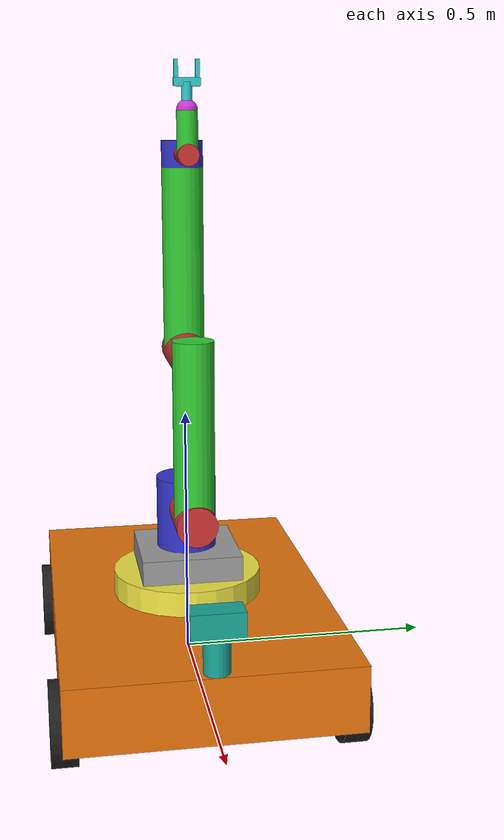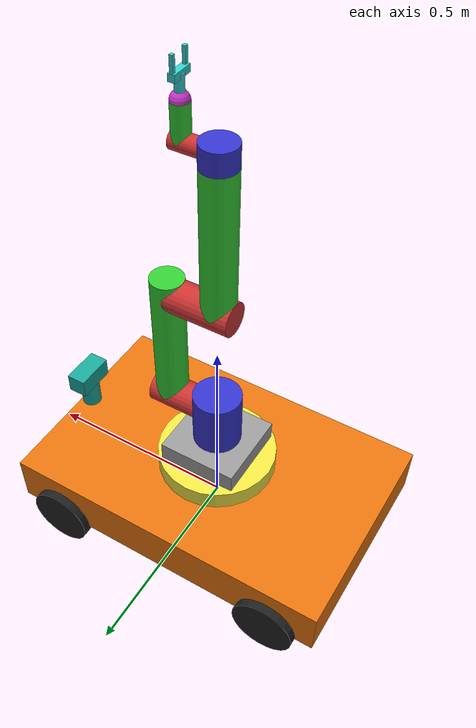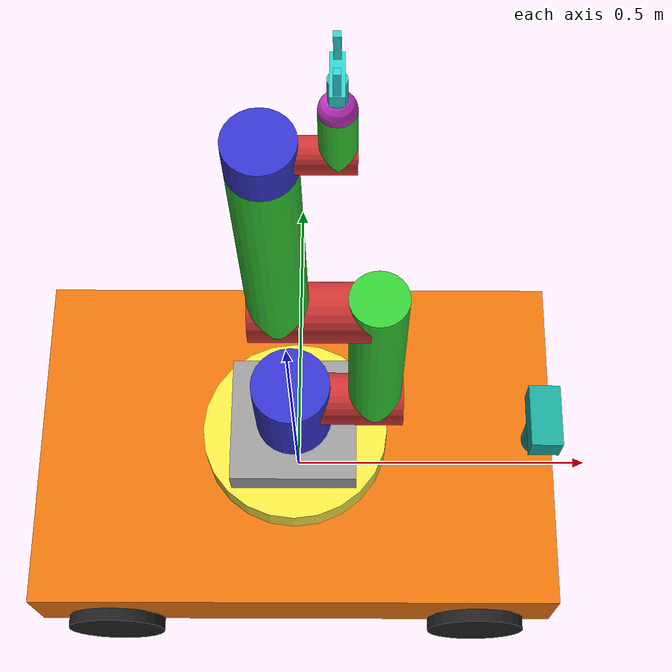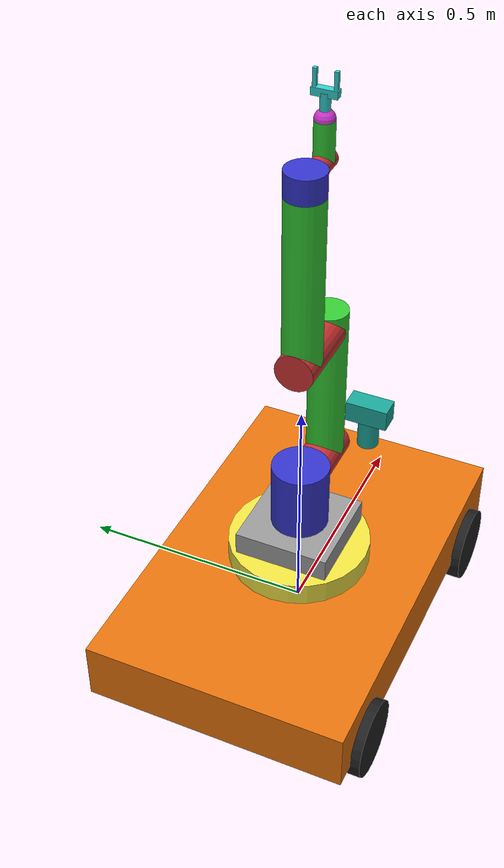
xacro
<?xml version="1.0"?>
<robot xmlns:xacro="http://www.ros.org/wiki/xacro" name="mobiarm">
    <xacro:arg name="initial_positions_file" default="initial_positions.yaml" />

    <!-- Import mobiarm urdf file -->
    <xacro:include filename="$(find main_nodes)/urdf/robot.urdf.xacro" />

    <!-- Import control_xacro -->
    <xacro:include filename="mobiarm.ros2_control.xacro" />

    <xacro:mobiarm_ros2_control name="FakeSystem" initial_positions_file="$(arg initial_positions_file)"/>

</robot>

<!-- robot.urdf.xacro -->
<robot name="mobiarm" xmlns:xacro="http://www.ros.org/wiki/xacro">

    <xacro:include filename="$(find main_nodes)/urdf/base.urdf.xacro" />
    <xacro:include filename="$(find main_nodes)/urdf/arm.urdf.xacro" />

    <link name="lidar_link">
        <visual>
            <geometry>
                <cylinder radius="0.15" length="0.05"/>
            </geometry>
        </visual>
        <inertial>
            <mass value="0.3"/>
            <inertia ixx="0.0005425" ixy="0" ixz="0"
                    iyy="0.0005425" iyz="0"
                    izz="0.00096"/>
        </inertial>
    </link>

    <joint name="lidar_joint" type="fixed">
        <parent link="robot_base"/>
        <child link="lidar_link"/>
        <origin xyz="0 0 0.15" rpy="0 0 0"/>
    </joint>

    <joint name="connector_joint" type="fixed">
        <parent link="lidar_link"/>
        <child link="arm_base_link"/>
        <origin xyz="0 0 0.025" rpy="0 0 0"/>
    </joint>

    <gazebo reference="lidar_link">
        <sensor type="ray" name="lidar">
            <!-- Scan plane ~2 cm above origin (z~0.17): clears the base top (0.125),
                 under the arm-base collision (~0.18). -->
            <pose>0 0 0.02 0 0 0</pose>
            <always_on>true</always_on>
            <visualize>true</visualize>
            <update_rate>10</update_rate>
            <ray>
            <scan>
                <horizontal>
                <samples>360</samples>
                <min_angle>-3.14159</min_angle>
                <max_angle>3.14159</max_angle>
                </horizontal>
            </scan>
            <range>
                <min>0.15</min>
                <max>12.0</max>
            </range>
            </ray>
            <plugin name="lidar_plugin" filename="libgazebo_ros_ray_sensor.so">
            <ros>
                <!-- Raw scan (has self-hits on the camera stand); scan_self_filter
                     cleans it and republishes /scan for SLAM/Nav2. -->
                <remapping>~/out:=scan_raw</remapping>
            </ros>
            <output_type>sensor_msgs/LaserScan</output_type>
            <frame_name>lidar_link</frame_name>
            </plugin>
        </sensor>
    </gazebo>

    <link name="camera_link">
        <visual>
            <geometry>
                <box size="0.05 0.1 0.05"/>
            </geometry>
            <material name="sensor_turquoise">
                <color rgba="0.1 0.65 0.6 1.0"/>
            </material>
        </visual>
        <!-- Collision kept (honest sim): the real lidar hits this; self-hits are
             removed downstream by scan_self_filter. -->
        <collision>
            <geometry><box size="0.05 0.05 0.05" /></geometry>
        </collision>
        <inertial>
            <mass value="0.3"/>
            <inertia ixx="0.0005425" ixy="0" ixz="0"
                    iyy="0.0005425" iyz="0"
                    izz="0.00096"/>
        </inertial>
    </link>

    <link name="camera_optical_frame"/>

    <joint name="camera_optical_joint" type="fixed">
        <parent link="camera_link"/>
        <child link="camera_optical_frame"/>
        <origin xyz="0 0 0" rpy="-1.5708 0 -1.5708"/>
    </joint>

    <link name="camera_stand_link">
        <visual>
            <geometry>
                <cylinder radius="0.025" length="0.1"/>
            </geometry>
            <material name="sensor_turquoise">
                <color rgba="0.1 0.65 0.6 1.0"/>
            </material>
        </visual>
        <!-- Collision kept (see camera_link): crosses the scan plane; self-hits
             removed by scan_self_filter. -->
        <collision>
            <geometry><cylinder radius="0.025" length="0.1"/></geometry>
        </collision>
        <inertial>
            <mass value="0.3"/>
            <inertia ixx="0.0005425" ixy="0" ixz="0"
                    iyy="0.0005425" iyz="0"
                    izz="0.00096"/>
        </inertial>
    </link>

    <joint name="camera_stand_joint" type="fixed">
        <parent link="robot_base"/>
        <child link="camera_stand_link"/>
        <origin xyz="0.4 0 0.17" rpy="0 0 0"/>
    </joint>

    <joint name="camera_joint" type="fixed">
        <parent link="camera_stand_link"/>
        <child link="camera_link"/>
        <origin xyz="0 0 0.05" rpy="0 0 0"/>
    </joint>

    <!-- Stand + camera share one colour so they read as a single mast. -->
    <gazebo reference="camera_stand_link"><material>Gazebo/Turquoise</material></gazebo>

    <gazebo reference="camera_link">
        <material>Gazebo/Turquoise</material>
        <sensor name="camera" type="depth">
            <always_on>true</always_on>
            <update_rate>30</update_rate>
            <visualize>true</visualize>
            <camera>
                <horizontal_fov>1.047</horizontal_fov>   <!-- ~60 degrees -->
                <image>
                    <width>640</width>
                    <height>480</height>
                    <format>R8G8B8</format>
                </image>
                <clip>
                    <near>0.05</near>
                    <far>10.0</far>
                </clip>
            </camera>
            <plugin name="camera_plugin" filename="libgazebo_ros_camera.so">
                <camera_name>camera</camera_name>
                <frame_name>camera_optical_frame</frame_name>
                <!-- valid depth range; readings outside come back as NaN -->
                <min_depth>0.05</min_depth>
                <max_depth>10.0</max_depth>
            </plugin>
        </sensor>
    </gazebo>

</robot>

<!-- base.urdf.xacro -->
<robot name="r2d2" xmlns:xacro="http://www.ros.org/wiki/xacro">

    <link name="robot_base" >
        <visual>
            <origin xyz="0 0 0.06" rpy="0 0 0"/>
            <geometry>
                <box size="0.85 0.55 0.13" />
            </geometry>
            <material name="body_orange">
                <color rgba="0.9 0.45 0.05 1.0"/>
            </material>
        </visual>
        <!-- Collision matches the body so the robot rests on its wheels; an
             oversized box lifted the wheels off the ground (no traction). -->
        <collision>
            <origin xyz="0 0 0.06" rpy="0 0 0"/>
             <geometry>
                <box size="0.85 0.55 0.13" />
            </geometry>
        </collision>
        <!-- Inertia for a 13 kg 0.85x0.55x0.13 box; COM lowered to z=0.04 to resist tipping. -->
        <inertial>
            <origin xyz="0 0 0.04" rpy="0 0 0"/>
            <mass value="13.0"/>
            <inertia ixx="0.3460" ixy="0" ixz="0"
                     iyy="0.8010" iyz="0"
                     izz="1.1104"/>
        </inertial>
    </link>

    <link name="left_wheel1">
        <visual>
            <geometry>
                <cylinder radius="0.08" length="0.05"/>
            </geometry>
            <material name="wheel_black">
                <color rgba="0.12 0.12 0.12 1.0"/>
            </material>
        </visual>
        <collision>
             <geometry>
                <cylinder radius="0.08" length="0.05"/>
            </geometry>
        </collision>
        <inertial>
            <mass value="0.3"/>
            <inertia ixx="0.0005425" ixy="0" ixz="0"
                     iyy="0.0005425" iyz="0"
                     izz="0.00096"/>
        </inertial>
    </link>

    <joint name="left_wheel1_joint" type="continuous">
        <parent link="robot_base"/>
        <child link="left_wheel1"/>
        <origin xyz="-0.3 0.27 0" rpy="-1.5707 0 0"/>
        <axis xyz="0 0 1"/>
    </joint>

    <link name="left_wheel2">
        <visual>
            <geometry>
                <cylinder radius="0.08" length="0.05"/>
            </geometry>
            <material name="wheel_black">
                <color rgba="0.12 0.12 0.12 1.0"/>
            </material>
        </visual>
        <collision>
             <geometry>
                <cylinder radius="0.08" length="0.05"/>
            </geometry>
        </collision>
        <inertial>
            <mass value="0.3"/>
            <inertia ixx="0.0005425" ixy="0" ixz="0"
                     iyy="0.0005425" iyz="0"
                     izz="0.00096"/>
        </inertial>
    </link>

    <joint name="left_wheel2_joint" type="continuous">
        <parent link="robot_base"/>
        <child link="left_wheel2"/>
        <origin xyz="0.3 0.27 0" rpy="-1.5707 0 0"/>
        <axis xyz="0 0 1"/>
    </joint>

    <link name="right_wheel1">
        <visual>
            <geometry>
                <cylinder radius="0.08" length="0.05"/>
            </geometry>
            <material name="wheel_black">
                <color rgba="0.12 0.12 0.12 1.0"/>
            </material>
        </visual>
        <collision>
             <geometry>
                <cylinder radius="0.08" length="0.05"/>
            </geometry>
        </collision>
        <inertial>
            <mass value="0.3"/>
            <inertia ixx="0.0005425" ixy="0" ixz="0"
                     iyy="0.0005425" iyz="0"
                     izz="0.00096"/>
        </inertial>
    </link>

    <joint name="right_wheel1_joint" type="continuous">
        <parent link="robot_base"/>
        <child link="right_wheel1"/>
        <origin xyz="-0.3 -0.27 0" rpy="-1.5707 0 0"/>
        <axis xyz="0 0 1"/>
    </joint>

    <link name="right_wheel2">
        <visual>
            <geometry>
                <cylinder radius="0.08" length="0.05"/>
            </geometry>
            <material name="wheel_black">
                <color rgba="0.12 0.12 0.12 1.0"/>
            </material>
        </visual>
        <collision>
             <geometry>
                <cylinder radius="0.08" length="0.05"/>
            </geometry>
        </collision>
        <inertial>
            <mass value="0.3"/>
            <inertia ixx="0.0005425" ixy="0" ixz="0"
                     iyy="0.0005425" iyz="0"
                     izz="0.00096"/>
        </inertial>
    </link>

    <joint name="right_wheel2_joint" type="continuous">
        <parent link="robot_base"/>
        <child link="right_wheel2"/>
        <origin xyz="0.3 -0.27 0" rpy="-1.5707 0 0"/>
        <axis xyz="0 0 1"/>
    </joint>

    <gazebo reference="left_wheel1"><mu1>1.0</mu1><mu2>0.7</mu2><fdir1>1 0 0</fdir1><material>Gazebo/Black</material></gazebo>
    <gazebo reference="left_wheel2"><mu1>1.0</mu1><mu2>0.7</mu2><fdir1>1 0 0</fdir1><material>Gazebo/Black</material></gazebo>
    <gazebo reference="right_wheel1"><mu1>1.0</mu1><mu2>0.7</mu2><fdir1>1 0 0</fdir1><material>Gazebo/Black</material></gazebo>
    <gazebo reference="right_wheel2"><mu1>1.0</mu1><mu2>0.7</mu2><fdir1>1 0 0</fdir1><material>Gazebo/Black</material></gazebo>

    <gazebo reference="robot_base"><material>Gazebo/Orange</material></gazebo>

    <!-- Differential drive: publishes /odom + odom->robot_base TF, subscribes /cmd_vel. -->
    <gazebo>
        <plugin name="diff_drive" filename="libgazebo_ros_diff_drive.so">
            <ros>
                <namespace>/</namespace>
            </ros>

            <num_wheel_pairs>2</num_wheel_pairs>

            <!-- pair 1 -->
            <left_joint>left_wheel1_joint</left_joint>
            <right_joint>right_wheel1_joint</right_joint>
            <!-- pair 2 -->
            <left_joint>left_wheel2_joint</left_joint>
            <right_joint>right_wheel2_joint</right_joint>

            <wheel_separation>0.54</wheel_separation>
            <wheel_separation>0.54</wheel_separation>
            <wheel_diameter>0.16</wheel_diameter>
            <wheel_diameter>0.16</wheel_diameter>

            <max_wheel_torque>20.0</max_wheel_torque>
            <max_wheel_acceleration>1.0</max_wheel_acceleration>

            <command_topic>cmd_vel</command_topic>
            <odometry_topic>odom</odometry_topic>
            <odometry_frame>odom</odometry_frame>
            <robot_base_frame>robot_base</robot_base_frame>

            <publish_odom>true</publish_odom>
            <!-- odom->robot_base from wheel odometry only; an EKF/IMU fusion here
                 caused a yaw-dependent scan shift during turns. SLAM's map->odom
                 absorbs the drift. -->
            <publish_odom_tf>true</publish_odom_tf>
            <publish_wheel_tf>true</publish_wheel_tf>
        </plugin>
    </gazebo>

    <gazebo>
        <plugin name="wheel_joint_states" filename="libgazebo_ros_joint_state_publisher.so">
            <ros><namespace>/</namespace></ros>
            <update_rate>30</update_rate>
            <joint_name>left_wheel1_joint</joint_name>
            <joint_name>left_wheel2_joint</joint_name>
            <joint_name>right_wheel1_joint</joint_name>
            <joint_name>right_wheel2_joint</joint_name>
        </plugin>
    </gazebo>

</robot>

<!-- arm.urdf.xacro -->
<robot name="robot_arm" xmlns:xacro="http://www.ros.org/wiki/xacro">

    <link name="arm_base_link">
        <inertial>
            <origin xyz="0 0 0.025" rpy="0 0 0"/>
            <mass value="2.0"/>
            <inertia ixx="0.007083" ixy="0" ixz="0" iyy="0.007083" iyz="0" izz="0.013333"/>
        </inertial>
        <visual>
            <origin xyz="0 0 0.025" rpy="0 0 0"/>
            <geometry>
                <box size="0.2 0.2 0.05"/>
            </geometry>
            <material name="grey">
                <color rgba="0.6 0.6 0.6 1.0"/>
            </material>
        </visual>
        <collision>
            <origin xyz="0 0 0.025" rpy="0 0 0"/>
            <geometry>
                <box size="0.18 0.18 0.04"/>
            </geometry>
        </collision>
    </link>

    <link name="waist_link">
        <inertial>
            <origin xyz="0 0 0" rpy="0 0 0"/>
            <mass value="1.0"/>
            <inertia ixx="0.002775" ixy="0" ixz="0" iyy="0.002775" iyz="0" izz="0.0018"/>
        </inertial>
        <visual>
            <geometry>
                <cylinder radius="0.06" length="0.15"/>
            </geometry>
            <material name="blue">
                <color rgba="0.2 0.2 0.8 1.0"/>
            </material>
        </visual>
        <collision>
            <origin xyz="0 0 0" rpy="0 0 0"/>
            <geometry>
                <box size="0.09 0.09 0.13"/>
            </geometry>
        </collision>
    </link>

    <joint name="j1_waist" type="revolute">
        <parent link="arm_base_link"/>
        <child link="waist_link"/>
        <origin xyz="0 0 0.12" rpy="0 0 0"/>
        <axis xyz="0 0 1"/>
        <limit lower="-3.14159" upper="3.14159" effort="100.0" velocity="1.0"/>
    </joint>

    <link name="shoulder_link">
        <inertial>
            <origin xyz="0 0 0" rpy="1.5708 0 1.5708"/>
            <mass value="0.5"/>
            <inertia ixx="0.0010167" ixy="0" ixz="0" iyy="0.0010167" iyz="0" izz="0.0004"/>
        </inertial>
        <visual>
            <origin xyz="0 0 0" rpy="1.5708 0 1.5708"/>
            <geometry>
                <cylinder radius="0.04" length="0.14"/>
            </geometry>
            <material name="red">
                <color rgba="0.8 0.2 0.2 1.0"/>
            </material>
        </visual>
        <collision>
            <origin xyz="0 0 0" rpy="1.5708 0 1.5708"/>
            <geometry>
                <box size="0.06 0.06 0.12"/>
            </geometry>
        </collision>
    </link>

    <joint name="j2_shoulder" type="revolute">
        <parent link="waist_link"/>
        <child link="shoulder_link"/>
        <origin xyz="0.10 0 0.02" rpy="0 0 0"/>
        <axis xyz="1 0 0"/>
        <limit lower="-3.14159" upper="3.14159" effort="100.0" velocity="1.0"/>
    </joint>

    <link name="shoulder_arm">
        <inertial>
            <origin xyz="0 0 0" rpy="0 0 0"/>
            <mass value="0.8"/>
            <inertia ixx="0.008487" ixy="0" ixz="0" iyy="0.008487" iyz="0" izz="0.00064"/>
        </inertial>
        <visual>
            <origin xyz="0 0 0" rpy="0 0 0"/>
            <geometry>
                <cylinder radius="0.04" length="0.35"/>
            </geometry>
            <material name="green">
                <color rgba="0.2 0.8 0.2 1.0"/>
            </material>
        </visual>
        <collision>
            <origin xyz="0 0 0" rpy="0 0 0"/>
            <geometry>
                <box size="0.06 0.06 0.31"/>
            </geometry>
        </collision>
    </link>

    <joint name="a1_shoulder" type="fixed">
        <parent link="shoulder_link"/>
        <child link="shoulder_arm"/>
        <origin xyz="0.027 0 0.18" rpy="0 0 0"/>
    </joint>

    <link name="elbow_link">
        <inertial>
            <origin xyz="0 0 0" rpy="1.5708 0 1.5708"/>
            <mass value="0.5"/>
            <inertia ixx="0.0012667" ixy="0" ixz="0" iyy="0.0012667" iyz="0" izz="0.0004"/>
        </inertial>
        <visual>
            <origin xyz="0 0 0" rpy="1.5708 0 1.5708"/>
            <geometry>
                <cylinder radius="0.04" length="0.16"/>
            </geometry>
            <material name="red">
                <color rgba="0.8 0.2 0.2 1.0"/>
            </material>
        </visual>
        <collision>
            <origin xyz="0 0 0" rpy="1.5708 0 1.5708"/>
            <geometry>
                <box size="0.06 0.06 0.14"/>
            </geometry>
        </collision>
    </link>

    <joint name="j3_elbow" type="revolute">
        <parent link="shoulder_arm"/>
        <child link="elbow_link"/>
        <origin xyz="-0.09 0 0.134" rpy="0 0 0"/>
        <axis xyz="1 0 0"/>
        <limit lower="-3.14159" upper="3.14159" effort="100.0" velocity="1.0"/>
    </joint>

    <link name="elbow_arm">
        <inertial>
            <origin xyz="0 0 0" rpy="0 0 0"/>
            <mass value="0.8"/>
            <inertia ixx="0.008487" ixy="0" ixz="0" iyy="0.008487" iyz="0" izz="0.00064"/>
        </inertial>
        <visual>
            <geometry>
                <cylinder radius="0.04" length="0.35"/>
            </geometry>
            <material name="green">
                <color rgba="0.2 0.8 0.2 1.0"/>
            </material>
        </visual>
        <collision>
            <origin xyz="0 0 0" rpy="0 0 0"/>
            <geometry>
                <box size="0.06 0.06 0.31"/>
            </geometry>
        </collision>
    </link>

     <joint name="a2_elbow" type="fixed">
        <parent link="elbow_link"/>
        <child link="elbow_arm"/>
        <origin xyz="-0.04 0 0.18" rpy="0 0 0"/>
    </joint>

    <link name="wrist_link">
        <inertial>
            <origin xyz="0 0 0" rpy="0 0 0"/>
            <mass value="0.3"/>
            <inertia ixx="0.0001825" ixy="0" ixz="0" iyy="0.0001825" iyz="0" izz="0.00024"/>
        </inertial>
        <visual>
            <geometry>
                <cylinder radius="0.04" length="0.05"/>
            </geometry>
            <material name="blue">
                <color rgba="0.2 0.2 0.8 1.0"/>
            </material>
        </visual>
        <collision>
            <origin xyz="0 0 0" rpy="0 0 0"/>
            <geometry>
                <box size="0.06 0.06 0.04"/>
            </geometry>
        </collision>
    </link>

    <joint name="j4_wrist" type="revolute">
        <parent link="elbow_arm"/>
        <child link="wrist_link"/>
        <origin xyz="0 0 0.2" rpy="0 0 0"/>
        <axis xyz="0 0 1"/>
        <limit lower="-3.14159" upper="3.14159" effort="100.0" velocity="1.0"/>
    </joint>

    <link name="wrist_pitch_link">
        <inertial>
            <origin xyz="0 0 0" rpy="1.5708 0 1.5708"/>
            <mass value="0.2"/>
            <inertia ixx="0.00012667" ixy="0" ixz="0" iyy="0.00012667" iyz="0" izz="0.00004"/>
        </inertial>
        <visual>
            <origin xyz="0 0 0" rpy="1.5708 0 1.5708"/>
            <geometry>
                <cylinder radius="0.02" length="0.08"/>
            </geometry>
            <material name="red">
                <color rgba="0.8 0.2 0.2 1.0"/>
            </material>
        </visual>
        <collision>
            <origin xyz="0 0 0" rpy="1.5708 0 1.5708"/>
            <geometry>
                <box size="0.03 0.03 0.04"/>
            </geometry>
        </collision>
    </link>

    <joint name="j5_wrist" type="revolute">
        <parent link="wrist_link"/>
        <child link="wrist_pitch_link"/>
        <origin xyz="0.06 0 0" rpy="0 0 0"/>
        <axis xyz="1 0 0"/>
        <limit lower="-3.14159" upper="3.14159" effort="100.0" velocity="1.0"/>
    </joint>

    <link name="wrist_arm">
        <inertial>
            <origin xyz="0 0 0" rpy="0 0 0"/>
            <mass value="0.2"/>
            <inertia ixx="0.00012667" ixy="0" ixz="0" iyy="0.00012667" iyz="0" izz="0.00004"/>
        </inertial>
        <visual>
            <geometry>
                <cylinder radius="0.02" length="0.08"/>
            </geometry>
            <material name="green">
                <color rgba="0.2 0.8 0.2 1.0"/>
            </material>
        </visual>
        <collision>
            <origin xyz="0 0 0" rpy="0 0 0"/>
            <geometry>
                <box size="0.03 0.03 0.05"/>
            </geometry>
        </collision>
    </link>

     <joint name="a3_wrist" type="fixed">
        <parent link="wrist_pitch_link"/>
        <child link="wrist_arm"/>
        <origin xyz="0.02 0 0.04" rpy="0 0 0"/>
    </joint>

     <link name="wrist_yaw_link">
        <inertial>
            <origin xyz="0 0 0" rpy="0 0 0"/>
            <mass value="0.1"/>
            <inertia ixx="0.000016" ixy="0" ixz="0" iyy="0.000016" iyz="0" izz="0.000016"/>
        </inertial>
        <visual>
            <geometry>
                <sphere radius="0.02"/>
            </geometry>
            <material name="purpel">
                <color rgba="0.8 0.2 0.8 1.0"/>
            </material>
        </visual>
        <collision>
            <geometry>
                <sphere radius="0.015"/>
            </geometry>
        </collision>
    </link>

    <joint name="j6_wrist" type="revolute">
        <parent link="wrist_arm"/>
        <child link="wrist_yaw_link"/>
        <origin xyz="0 0 0.04" rpy="0 0 0"/>
        <axis xyz="0 1 0"/>
        <limit lower="-1.54159" upper="1.54159" effort="100.0" velocity="1.0"/>
    </joint>

    <link name="tool_link">
        <inertial>
            <origin xyz="0 0 0" rpy="0 0 0"/>
            <mass value="0.05"/>
            <inertia ixx="0.00000792" ixy="0" ixz="0" iyy="0.00000792" iyz="0" izz="0.0000025"/>
        </inertial>
        <visual>
            <geometry>
                <cylinder radius="0.01" length="0.04"/>
            </geometry>
            <material name="else">
                <color rgba="0.2 0.8 0.8 1.0"/>
            </material>
        </visual>
        <collision>
            <origin xyz="0 0 0" rpy="0 0 0"/>
            <geometry>
                <box size="0.015 0.015 0.03"/>
            </geometry>
        </collision>
    </link>

    <joint name="tool_joint" type="fixed">
        <parent link="wrist_yaw_link"/>
        <child link="tool_link"/>
        <origin xyz="0 0 0.03" rpy="0 0 0"/>
    </joint>

     <link name="gripper_link">
        <inertial>
            <origin xyz="0 0 0" rpy="1.5708 0 0"/>
            <mass value="0.05"/>
            <inertia ixx="0.00001135" ixy="0" ixz="0" iyy="0.00001135" iyz="0" izz="0.000001875"/>
        </inertial>
        <visual>
            <origin xyz="0 0 0" rpy="1.5708 0 0"/>
            <geometry>
                <box size="0.015 0.015 0.05"/>
            </geometry>
            <material name="else">
                <color rgba="0.2 0.8 0.8 1.0"/>
            </material>
        </visual>
        <collision>
            <origin xyz="0 0 0" rpy="1.5708 0 0"/>
            <geometry>
                <box size="0.015 0.015 0.03"/>
            </geometry>
        </collision>
    </link>

    <joint name="gripper_joint" type="fixed">
        <parent link="tool_link"/>
        <child link="gripper_link"/>
        <origin xyz="0 0 0.02" rpy="0 0 0"/>
    </joint>

    <link name="gripperfinger_left_link">
        <inertial>
            <origin xyz="0 0 0" rpy="0 0 0"/>
            <mass value="0.02"/>
            <inertia ixx="0.00000276" ixy="0" ixz="0" iyy="0.00000276" iyz="0" izz="0.0000001875"/>
        </inertial>
        <visual>
            <geometry>
                <box size="0.0075 0.0075 0.04"/>
            </geometry>
            <material name="else">
                <color rgba="0.2 0.8 0.8 1.0"/>
            </material>
        </visual>
        <collision>
            <geometry>
                <box size="0.0075 0.0075 0.04"/>
            </geometry>
        </collision>
    </link>

    <link name="gripperfinger_right_link">
        <inertial>
            <origin xyz="0 0 0" rpy="0 0 0"/>
            <mass value="0.02"/>
            <inertia ixx="0.00000276" ixy="0" ixz="0" iyy="0.00000276" iyz="0" izz="0.0000001875"/>
        </inertial>
        <visual>
            <geometry>
                <box size="0.0075 0.0075 0.04"/>
            </geometry>
            <material name="else">
                <color rgba="0.2 0.8 0.8 1.0"/>
            </material>
        </visual>
        <collision>
            <geometry>
                <box size="0.0075 0.0075 0.04"/>
            </geometry>
        </collision>
    </link>

    <joint name="gripperfinger_left_joint" type="prismatic">
        <parent link="gripper_link"/>
        <child link="gripperfinger_left_link"/>
        <origin xyz="0 0.02 0.02" rpy="0 0 0"/>
        <axis xyz="0 -1 0"/>
        <limit lower="0" upper="0.02" effort="100.0" velocity="1.0"/>
    </joint>

    <joint name="gripperfinger_right_joint" type="prismatic">
        <parent link="gripper_link"/>
        <child link="gripperfinger_right_link"/>
        <origin xyz="0 -0.02 0.02" rpy="0 0 0"/>
        <axis xyz="0 1 0"/>
        <limit lower="0" upper="0.02" effort="100.0" velocity="1.0"/>
    </joint>

</robot>
